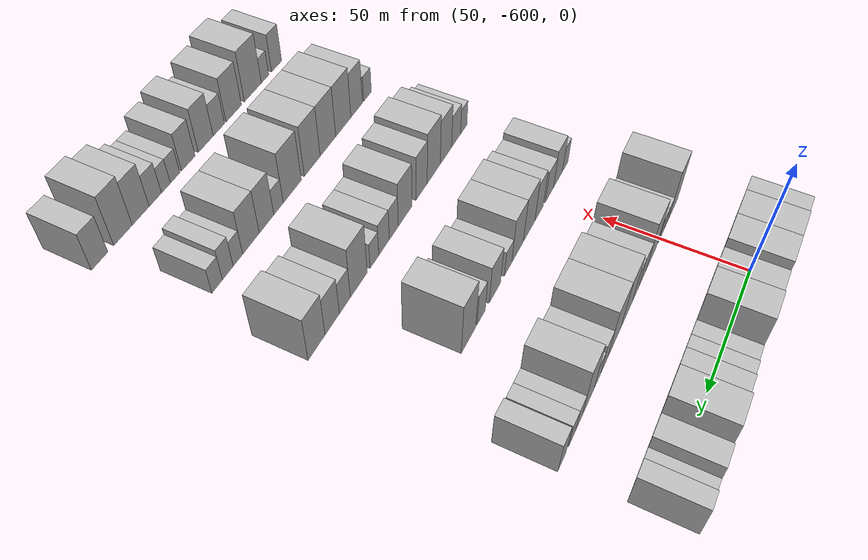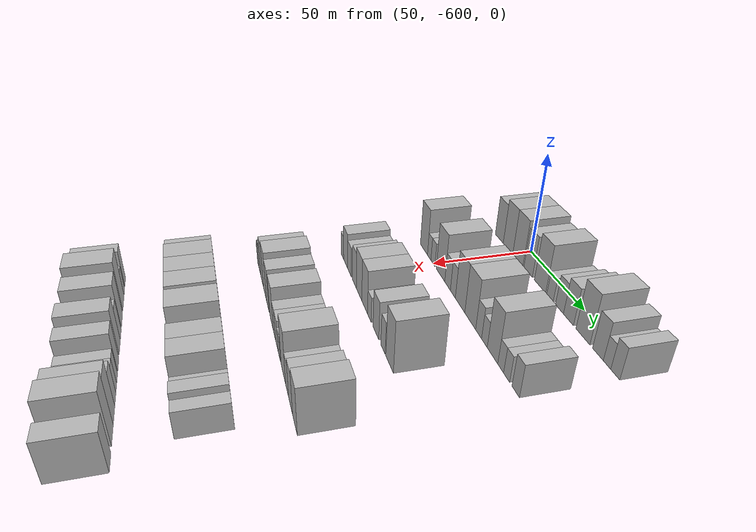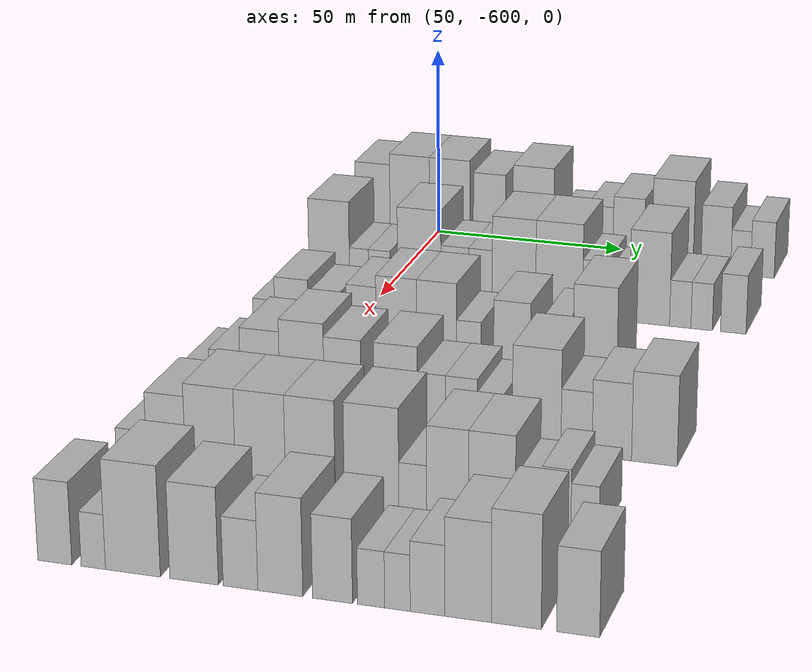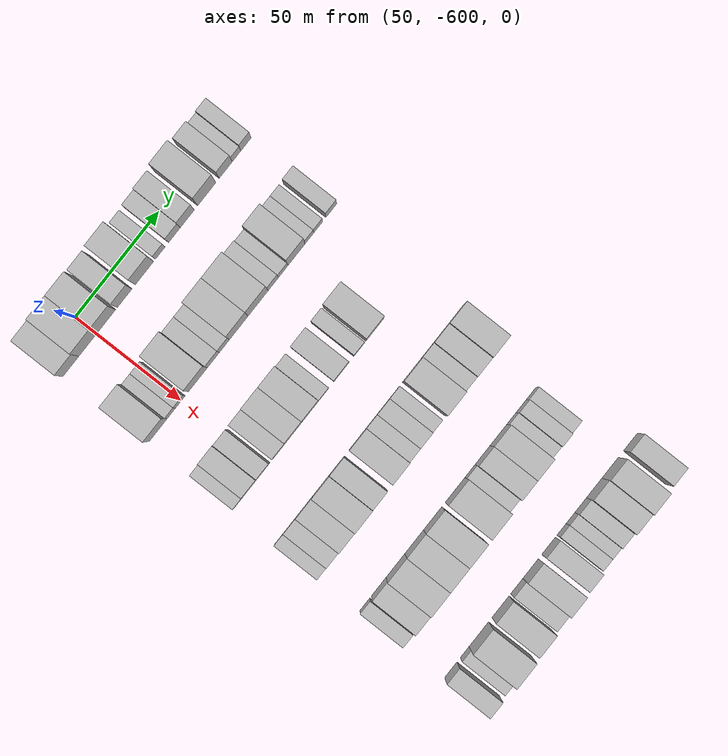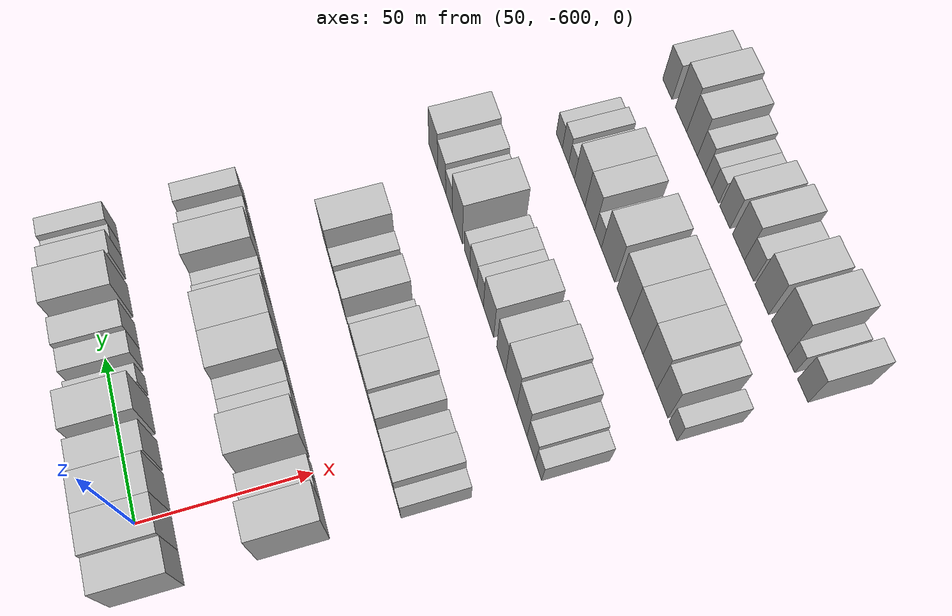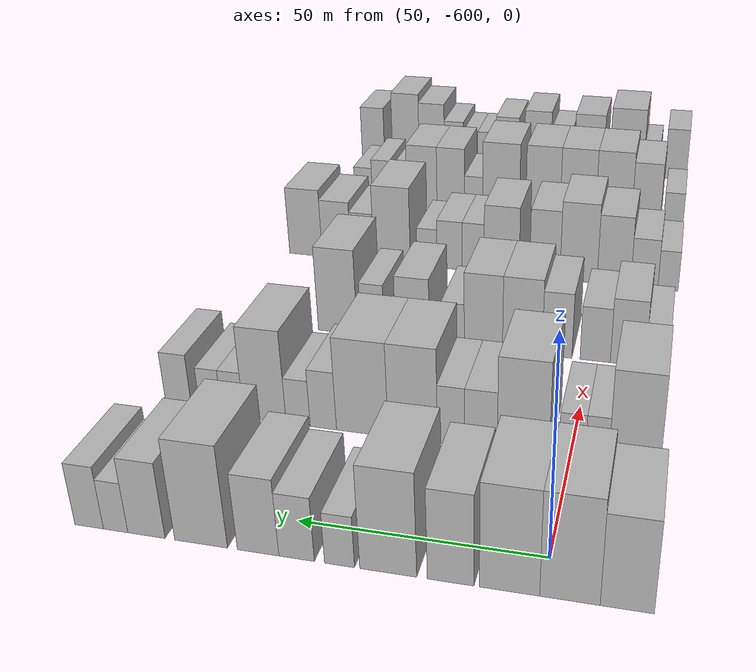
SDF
<sdf version="1.6">
 <world name="default">
  <model name="building_1">
   <static>1</static>
   <pose>50.0000 -615.2156 0 0.000000 0.000000 0.000000</pose>
   <link name="link">
    <pose>0 0 10.50 0 0 0</pose>
    <collision name="collision"><geometry><box><size>20.0000 9.5688 21.0000</size></box></geometry></collision>
    <visual name="visual">
     <cast_shadows>0</cast_shadows>
     <geometry><box><size>20.0000 9.5688 21.0000</size></box></geometry>
     <material>
      <script>
       <uri>model://HANNAS_wall/materials/scripts</uri>
       <uri>model://HANNAS_wall/materials/textures</uri>
       <name>vrc/HANNAS_wall</name>
      </script>
     </material>
    </visual>
   </link>
  </model>
  <model name="building_2">
   <static>1</static>
   <pose>50.0000 -604.9854 0 0.000000 0.000000 0.000000</pose>
   <link name="link">
    <pose>0 0 12.00 0 0 0</pose>
    <collision name="collision"><geometry><box><size>20.0000 10.8915 24.0000</size></box></geometry></collision>
    <visual name="visual">
     <cast_shadows>0</cast_shadows>
     <geometry><box><size>20.0000 10.8915 24.0000</size></box></geometry>
     <material>
      <script>
       <uri>model://HANNAS_wall/materials/scripts</uri>
       <uri>model://HANNAS_wall/materials/textures</uri>
       <name>vrc/HANNAS_wall</name>
      </script>
     </material>
    </visual>
   </link>
  </model>
  <model name="building_3">
   <static>1</static>
   <pose>50.0000 -594.0050 0 0.000000 0.000000 0.000000</pose>
   <link name="link">
    <pose>0 0 12.00 0 0 0</pose>
    <collision name="collision"><geometry><box><size>20.0000 11.0693 24.0000</size></box></geometry></collision>
    <visual name="visual">
     <cast_shadows>0</cast_shadows>
     <geometry><box><size>20.0000 11.0693 24.0000</size></box></geometry>
     <material>
      <script>
       <uri>model://HANNAS_wall/materials/scripts</uri>
       <uri>model://HANNAS_wall/materials/textures</uri>
       <name>vrc/HANNAS_wall</name>
      </script>
     </material>
    </visual>
   </link>
  </model>
  <model name="building_4">
   <static>1</static>
   <pose>50.0000 -583.0827 0 0.000000 0.000000 0.000000</pose>
   <link name="link">
    <pose>0 0 10.50 0 0 0</pose>
    <collision name="collision"><geometry><box><size>20.0000 8.7754 21.0000</size></box></geometry></collision>
    <visual name="visual">
     <cast_shadows>0</cast_shadows>
     <geometry><box><size>20.0000 8.7754 21.0000</size></box></geometry>
     <material>
      <script>
       <uri>model://HANNAS_wall/materials/scripts</uri>
       <uri>model://HANNAS_wall/materials/textures</uri>
       <name>vrc/HANNAS_wall</name>
      </script>
     </material>
    </visual>
   </link>
  </model>
  <model name="building_5">
   <static>1</static>
   <pose>50.0000 -571.2221 0 0.000000 0.000000 0.000000</pose>
   <link name="link">
    <pose>0 0 12.00 0 0 0</pose>
    <collision name="collision"><geometry><box><size>20.0000 10.9458 24.0000</size></box></geometry></collision>
    <visual name="visual">
     <cast_shadows>0</cast_shadows>
     <geometry><box><size>20.0000 10.9458 24.0000</size></box></geometry>
     <material>
      <script>
       <uri>model://HANNAS_wall/materials/scripts</uri>
       <uri>model://HANNAS_wall/materials/textures</uri>
       <name>vrc/HANNAS_wall</name>
      </script>
     </material>
    </visual>
   </link>
  </model>
  <model name="building_6">
   <static>1</static>
   <pose>50.0000 -561.8170 0 0.000000 0.000000 0.000000</pose>
   <link name="link">
    <pose>0 0 6.00 0 0 0</pose>
    <collision name="collision"><geometry><box><size>20.0000 5.8643 12.0000</size></box></geometry></collision>
    <visual name="visual">
     <cast_shadows>0</cast_shadows>
     <geometry><box><size>20.0000 5.8643 12.0000</size></box></geometry>
     <material>
      <script>
       <uri>model://HANNAS_wall/materials/scripts</uri>
       <uri>model://HANNAS_wall/materials/textures</uri>
       <name>vrc/HANNAS_wall</name>
      </script>
     </material>
    </visual>
   </link>
  </model>
  <model name="building_7">
   <static>1</static>
   <pose>50.0000 -553.3687 0 0.000000 0.000000 0.000000</pose>
   <link name="link">
    <pose>0 0 7.50 0 0 0</pose>
    <collision name="collision"><geometry><box><size>20.0000 7.0323 15.0000</size></box></geometry></collision>
    <visual name="visual">
     <cast_shadows>0</cast_shadows>
     <geometry><box><size>20.0000 7.0323 15.0000</size></box></geometry>
     <material>
      <script>
       <uri>model://HANNAS_wall/materials/scripts</uri>
       <uri>model://HANNAS_wall/materials/textures</uri>
       <name>vrc/HANNAS_wall</name>
      </script>
     </material>
    </visual>
   </link>
  </model>
  <model name="building_8">
   <static>1</static>
   <pose>50.0000 -545.6769 0 0.000000 0.000000 0.000000</pose>
   <link name="link">
    <pose>0 0 9.00 0 0 0</pose>
    <collision name="collision"><geometry><box><size>20.0000 8.3513 18.0000</size></box></geometry></collision>
    <visual name="visual">
     <cast_shadows>0</cast_shadows>
     <geometry><box><size>20.0000 8.3513 18.0000</size></box></geometry>
     <material>
      <script>
       <uri>model://HANNAS_wall/materials/scripts</uri>
       <uri>model://HANNAS_wall/materials/textures</uri>
       <name>vrc/HANNAS_wall</name>
      </script>
     </material>
    </visual>
   </link>
  </model>
  <model name="building_9">
   <static>1</static>
   <pose>50.0000 -534.0716 0 0.000000 0.000000 0.000000</pose>
   <link name="link">
    <pose>0 0 12.00 0 0 0</pose>
    <collision name="collision"><geometry><box><size>20.0000 10.8593 24.0000</size></box></geometry></collision>
    <visual name="visual">
     <cast_shadows>0</cast_shadows>
     <geometry><box><size>20.0000 10.8593 24.0000</size></box></geometry>
     <material>
      <script>
       <uri>model://HANNAS_wall/materials/scripts</uri>
       <uri>model://HANNAS_wall/materials/textures</uri>
       <name>vrc/HANNAS_wall</name>
      </script>
     </material>
    </visual>
   </link>
  </model>
  <model name="building_10">
   <static>1</static>
   <pose>50.0000 -522.7396 0 0.000000 0.000000 0.000000</pose>
   <link name="link">
    <pose>0 0 9.00 0 0 0</pose>
    <collision name="collision"><geometry><box><size>20.0000 7.8048 18.0000</size></box></geometry></collision>
    <visual name="visual">
     <cast_shadows>0</cast_shadows>
     <geometry><box><size>20.0000 7.8048 18.0000</size></box></geometry>
     <material>
      <script>
       <uri>model://HANNAS_wall/materials/scripts</uri>
       <uri>model://HANNAS_wall/materials/textures</uri>
       <name>vrc/HANNAS_wall</name>
      </script>
     </material>
    </visual>
   </link>
  </model>
  <model name="building_11">
   <static>1</static>
   <pose>50.0000 -516.2478 0 0.000000 0.000000 0.000000</pose>
   <link name="link">
    <pose>0 0 6.00 0 0 0</pose>
    <collision name="collision"><geometry><box><size>20.0000 5.1789 12.0000</size></box></geometry></collision>
    <visual name="visual">
     <cast_shadows>0</cast_shadows>
     <geometry><box><size>20.0000 5.1789 12.0000</size></box></geometry>
     <material>
      <script>
       <uri>model://HANNAS_wall/materials/scripts</uri>
       <uri>model://HANNAS_wall/materials/textures</uri>
       <name>vrc/HANNAS_wall</name>
      </script>
     </material>
    </visual>
   </link>
  </model>
  <model name="building_12">
   <static>1</static>
   <pose>50.0000 -510.6056 0 0.000000 0.000000 0.000000</pose>
   <link name="link">
    <pose>0 0 7.50 0 0 0</pose>
    <collision name="collision"><geometry><box><size>20.0000 6.1054 15.0000</size></box></geometry></collision>
    <visual name="visual">
     <cast_shadows>0</cast_shadows>
     <geometry><box><size>20.0000 6.1054 15.0000</size></box></geometry>
     <material>
      <script>
       <uri>model://HANNAS_wall/materials/scripts</uri>
       <uri>model://HANNAS_wall/materials/textures</uri>
       <name>vrc/HANNAS_wall</name>
      </script>
     </material>
    </visual>
   </link>
  </model>
  <model name="building_141">
   <static>1</static>
   <pose>90.0000 -613.6190 0 0.000000 0.000000 0.000000</pose>
   <link name="link">
    <pose>0 0 12.00 0 0 0</pose>
    <collision name="collision"><geometry><box><size>20.0000 10.7619 24.0000</size></box></geometry></collision>
    <visual name="visual">
     <cast_shadows>0</cast_shadows>
     <geometry><box><size>20.0000 10.7619 24.0000</size></box></geometry>
     <material>
      <script>
       <uri>model://HANNAS_wall/materials/scripts</uri>
       <uri>model://HANNAS_wall/materials/textures</uri>
       <name>vrc/HANNAS_wall</name>
      </script>
     </material>
    </visual>
   </link>
  </model>
  <model name="building_142">
   <static>1</static>
   <pose>90.0000 -605.7473 0 0.000000 0.000000 0.000000</pose>
   <link name="link">
    <pose>0 0 6.00 0 0 0</pose>
    <collision name="collision"><geometry><box><size>20.0000 4.9814 12.0000</size></box></geometry></collision>
    <visual name="visual">
     <cast_shadows>0</cast_shadows>
     <geometry><box><size>20.0000 4.9814 12.0000</size></box></geometry>
     <material>
      <script>
       <uri>model://HANNAS_wall/materials/scripts</uri>
       <uri>model://HANNAS_wall/materials/textures</uri>
       <name>vrc/HANNAS_wall</name>
      </script>
     </material>
    </visual>
   </link>
  </model>
  <model name="building_143">
   <static>1</static>
   <pose>90.0000 -600.4229 0 0.000000 0.000000 0.000000</pose>
   <link name="link">
    <pose>0 0 6.00 0 0 0</pose>
    <collision name="collision"><geometry><box><size>20.0000 5.6675 12.0000</size></box></geometry></collision>
    <visual name="visual">
     <cast_shadows>0</cast_shadows>
     <geometry><box><size>20.0000 5.6675 12.0000</size></box></geometry>
     <material>
      <script>
       <uri>model://HANNAS_wall/materials/scripts</uri>
       <uri>model://HANNAS_wall/materials/textures</uri>
       <name>vrc/HANNAS_wall</name>
      </script>
     </material>
    </visual>
   </link>
  </model>
  <model name="building_144">
   <static>1</static>
   <pose>90.0000 -589.9402 0 0.000000 0.000000 0.000000</pose>
   <link name="link">
    <pose>0 0 12.00 0 0 0</pose>
    <collision name="collision"><geometry><box><size>20.0000 11.2980 24.0000</size></box></geometry></collision>
    <visual name="visual">
     <cast_shadows>0</cast_shadows>
     <geometry><box><size>20.0000 11.2980 24.0000</size></box></geometry>
     <material>
      <script>
       <uri>model://HANNAS_wall/materials/scripts</uri>
       <uri>model://HANNAS_wall/materials/textures</uri>
       <name>vrc/HANNAS_wall</name>
      </script>
     </material>
    </visual>
   </link>
  </model>
  <model name="building_145">
   <static>1</static>
   <pose>90.0000 -580.6962 0 0.000000 0.000000 0.000000</pose>
   <link name="link">
    <pose>0 0 7.50 0 0 0</pose>
    <collision name="collision"><geometry><box><size>20.0000 7.1899 15.0000</size></box></geometry></collision>
    <visual name="visual">
     <cast_shadows>0</cast_shadows>
     <geometry><box><size>20.0000 7.1899 15.0000</size></box></geometry>
     <material>
      <script>
       <uri>model://HANNAS_wall/materials/scripts</uri>
       <uri>model://HANNAS_wall/materials/textures</uri>
       <name>vrc/HANNAS_wall</name>
      </script>
     </material>
    </visual>
   </link>
  </model>
  <model name="building_146">
   <static>1</static>
   <pose>90.0000 -574.0619 0 0.000000 0.000000 0.000000</pose>
   <link name="link">
    <pose>0 0 7.50 0 0 0</pose>
    <collision name="collision"><geometry><box><size>20.0000 6.0786 15.0000</size></box></geometry></collision>
    <visual name="visual">
     <cast_shadows>0</cast_shadows>
     <geometry><box><size>20.0000 6.0786 15.0000</size></box></geometry>
     <material>
      <script>
       <uri>model://HANNAS_wall/materials/scripts</uri>
       <uri>model://HANNAS_wall/materials/textures</uri>
       <name>vrc/HANNAS_wall</name>
      </script>
     </material>
    </visual>
   </link>
  </model>
  <model name="building_147">
   <static>1</static>
   <pose>90.0000 -565.4503 0 0.000000 0.000000 0.000000</pose>
   <link name="link">
    <pose>0 0 12.00 0 0 0</pose>
    <collision name="collision"><geometry><box><size>20.0000 11.1445 24.0000</size></box></geometry></collision>
    <visual name="visual">
     <cast_shadows>0</cast_shadows>
     <geometry><box><size>20.0000 11.1445 24.0000</size></box></geometry>
     <material>
      <script>
       <uri>model://HANNAS_wall/materials/scripts</uri>
       <uri>model://HANNAS_wall/materials/textures</uri>
       <name>vrc/HANNAS_wall</name>
      </script>
     </material>
    </visual>
   </link>
  </model>
  <model name="building_148">
   <static>1</static>
   <pose>90.0000 -553.9315 0 0.000000 0.000000 0.000000</pose>
   <link name="link">
    <pose>0 0 12.00 0 0 0</pose>
    <collision name="collision"><geometry><box><size>20.0000 11.8931 24.0000</size></box></geometry></collision>
    <visual name="visual">
     <cast_shadows>0</cast_shadows>
     <geometry><box><size>20.0000 11.8931 24.0000</size></box></geometry>
     <material>
      <script>
       <uri>model://HANNAS_wall/materials/scripts</uri>
       <uri>model://HANNAS_wall/materials/textures</uri>
       <name>vrc/HANNAS_wall</name>
      </script>
     </material>
    </visual>
   </link>
  </model>
  <model name="building_149">
   <static>1</static>
   <pose>90.0000 -544.9189 0 0.000000 0.000000 0.000000</pose>
   <link name="link">
    <pose>0 0 7.50 0 0 0</pose>
    <collision name="collision"><geometry><box><size>20.0000 6.1323 15.0000</size></box></geometry></collision>
    <visual name="visual">
     <cast_shadows>0</cast_shadows>
     <geometry><box><size>20.0000 6.1323 15.0000</size></box></geometry>
     <material>
      <script>
       <uri>model://HANNAS_wall/materials/scripts</uri>
       <uri>model://HANNAS_wall/materials/textures</uri>
       <name>vrc/HANNAS_wall</name>
      </script>
     </material>
    </visual>
   </link>
  </model>
  <model name="building_150">
   <static>1</static>
   <pose>90.0000 -539.0211 0 0.000000 0.000000 0.000000</pose>
   <link name="link">
    <pose>0 0 6.00 0 0 0</pose>
    <collision name="collision"><geometry><box><size>20.0000 5.6632 12.0000</size></box></geometry></collision>
    <visual name="visual">
     <cast_shadows>0</cast_shadows>
     <geometry><box><size>20.0000 5.6632 12.0000</size></box></geometry>
     <material>
      <script>
       <uri>model://HANNAS_wall/materials/scripts</uri>
       <uri>model://HANNAS_wall/materials/textures</uri>
       <name>vrc/HANNAS_wall</name>
      </script>
     </material>
    </visual>
   </link>
  </model>
  <model name="building_151">
   <static>1</static>
   <pose>90.0000 -531.1451 0 0.000000 0.000000 0.000000</pose>
   <link name="link">
    <pose>0 0 12.00 0 0 0</pose>
    <collision name="collision"><geometry><box><size>20.0000 10.0889 24.0000</size></box></geometry></collision>
    <visual name="visual">
     <cast_shadows>0</cast_shadows>
     <geometry><box><size>20.0000 10.0889 24.0000</size></box></geometry>
     <material>
      <script>
       <uri>model://HANNAS_wall/materials/scripts</uri>
       <uri>model://HANNAS_wall/materials/textures</uri>
       <name>vrc/HANNAS_wall</name>
      </script>
     </material>
    </visual>
   </link>
  </model>
  <model name="building_152">
   <static>1</static>
   <pose>90.0000 -523.4456 0 0.000000 0.000000 0.000000</pose>
   <link name="link">
    <pose>0 0 6.00 0 0 0</pose>
    <collision name="collision"><geometry><box><size>20.0000 5.3101 12.0000</size></box></geometry></collision>
    <visual name="visual">
     <cast_shadows>0</cast_shadows>
     <geometry><box><size>20.0000 5.3101 12.0000</size></box></geometry>
     <material>
      <script>
       <uri>model://HANNAS_wall/materials/scripts</uri>
       <uri>model://HANNAS_wall/materials/textures</uri>
       <name>vrc/HANNAS_wall</name>
      </script>
     </material>
    </visual>
   </link>
  </model>
  <model name="building_153">
   <static>1</static>
   <pose>90.0000 -518.1492 0 0.000000 0.000000 0.000000</pose>
   <link name="link">
    <pose>0 0 6.00 0 0 0</pose>
    <collision name="collision"><geometry><box><size>20.0000 5.2826 12.0000</size></box></geometry></collision>
    <visual name="visual">
     <cast_shadows>0</cast_shadows>
     <geometry><box><size>20.0000 5.2826 12.0000</size></box></geometry>
     <material>
      <script>
       <uri>model://HANNAS_wall/materials/scripts</uri>
       <uri>model://HANNAS_wall/materials/textures</uri>
       <name>vrc/HANNAS_wall</name>
      </script>
     </material>
    </visual>
   </link>
  </model>
  <model name="building_154">
   <static>1</static>
   <pose>90.0000 -510.3659 0 0.000000 0.000000 0.000000</pose>
   <link name="link">
    <pose>0 0 7.50 0 0 0</pose>
    <collision name="collision"><geometry><box><size>20.0000 6.2840 15.0000</size></box></geometry></collision>
    <visual name="visual">
     <cast_shadows>0</cast_shadows>
     <geometry><box><size>20.0000 6.2840 15.0000</size></box></geometry>
     <material>
      <script>
       <uri>model://HANNAS_wall/materials/scripts</uri>
       <uri>model://HANNAS_wall/materials/textures</uri>
       <name>vrc/HANNAS_wall</name>
      </script>
     </material>
    </visual>
   </link>
  </model>
  <model name="building_276">
   <static>1</static>
   <pose>130.0000 -616.2483 0 0.000000 0.000000 0.000000</pose>
   <link name="link">
    <pose>0 0 6.00 0 0 0</pose>
    <collision name="collision"><geometry><box><size>20.0000 5.5034 12.0000</size></box></geometry></collision>
    <visual name="visual">
     <cast_shadows>0</cast_shadows>
     <geometry><box><size>20.0000 5.5034 12.0000</size></box></geometry>
     <material>
      <script>
       <uri>model://HANNAS_wall/materials/scripts</uri>
       <uri>model://HANNAS_wall/materials/textures</uri>
       <name>vrc/HANNAS_wall</name>
      </script>
     </material>
    </visual>
   </link>
  </model>
  <model name="building_277">
   <static>1</static>
   <pose>130.0000 -609.2471 0 0.000000 0.000000 0.000000</pose>
   <link name="link">
    <pose>0 0 9.00 0 0 0</pose>
    <collision name="collision"><geometry><box><size>20.0000 8.4990 18.0000</size></box></geometry></collision>
    <visual name="visual">
     <cast_shadows>0</cast_shadows>
     <geometry><box><size>20.0000 8.4990 18.0000</size></box></geometry>
     <material>
      <script>
       <uri>model://HANNAS_wall/materials/scripts</uri>
       <uri>model://HANNAS_wall/materials/textures</uri>
       <name>vrc/HANNAS_wall</name>
      </script>
     </material>
    </visual>
   </link>
  </model>
  <model name="building_278">
   <static>1</static>
   <pose>130.0000 -601.2734 0 0.000000 0.000000 0.000000</pose>
   <link name="link">
    <pose>0 0 7.50 0 0 0</pose>
    <collision name="collision"><geometry><box><size>20.0000 7.4485 15.0000</size></box></geometry></collision>
    <visual name="visual">
     <cast_shadows>0</cast_shadows>
     <geometry><box><size>20.0000 7.4485 15.0000</size></box></geometry>
     <material>
      <script>
       <uri>model://HANNAS_wall/materials/scripts</uri>
       <uri>model://HANNAS_wall/materials/textures</uri>
       <name>vrc/HANNAS_wall</name>
      </script>
     </material>
    </visual>
   </link>
  </model>
  <model name="building_279">
   <static>1</static>
   <pose>130.0000 -591.8523 0 0.000000 0.000000 0.000000</pose>
   <link name="link">
    <pose>0 0 9.00 0 0 0</pose>
    <collision name="collision"><geometry><box><size>20.0000 7.3937 18.0000</size></box></geometry></collision>
    <visual name="visual">
     <cast_shadows>0</cast_shadows>
     <geometry><box><size>20.0000 7.3937 18.0000</size></box></geometry>
     <material>
      <script>
       <uri>model://HANNAS_wall/materials/scripts</uri>
       <uri>model://HANNAS_wall/materials/textures</uri>
       <name>vrc/HANNAS_wall</name>
      </script>
     </material>
    </visual>
   </link>
  </model>
  <model name="building_280">
   <static>1</static>
   <pose>130.0000 -583.1467 0 0.000000 0.000000 0.000000</pose>
   <link name="link">
    <pose>0 0 10.50 0 0 0</pose>
    <collision name="collision"><geometry><box><size>20.0000 10.0175 21.0000</size></box></geometry></collision>
    <visual name="visual">
     <cast_shadows>0</cast_shadows>
     <geometry><box><size>20.0000 10.0175 21.0000</size></box></geometry>
     <material>
      <script>
       <uri>model://HANNAS_wall/materials/scripts</uri>
       <uri>model://HANNAS_wall/materials/textures</uri>
       <name>vrc/HANNAS_wall</name>
      </script>
     </material>
    </visual>
   </link>
  </model>
  <model name="building_281">
   <static>1</static>
   <pose>130.0000 -573.2533 0 0.000000 0.000000 0.000000</pose>
   <link name="link">
    <pose>0 0 10.50 0 0 0</pose>
    <collision name="collision"><geometry><box><size>20.0000 9.7693 21.0000</size></box></geometry></collision>
    <visual name="visual">
     <cast_shadows>0</cast_shadows>
     <geometry><box><size>20.0000 9.7693 21.0000</size></box></geometry>
     <material>
      <script>
       <uri>model://HANNAS_wall/materials/scripts</uri>
       <uri>model://HANNAS_wall/materials/textures</uri>
       <name>vrc/HANNAS_wall</name>
      </script>
     </material>
    </visual>
   </link>
  </model>
  <model name="building_282">
   <static>1</static>
   <pose>130.0000 -565.3790 0 0.000000 0.000000 0.000000</pose>
   <link name="link">
    <pose>0 0 6.00 0 0 0</pose>
    <collision name="collision"><geometry><box><size>20.0000 5.9793 12.0000</size></box></geometry></collision>
    <visual name="visual">
     <cast_shadows>0</cast_shadows>
     <geometry><box><size>20.0000 5.9793 12.0000</size></box></geometry>
     <material>
      <script>
       <uri>model://HANNAS_wall/materials/scripts</uri>
       <uri>model://HANNAS_wall/materials/textures</uri>
       <name>vrc/HANNAS_wall</name>
      </script>
     </material>
    </visual>
   </link>
  </model>
  <model name="building_283">
   <static>1</static>
   <pose>130.0000 -554.9411 0 0.000000 0.000000 0.000000</pose>
   <link name="link">
    <pose>0 0 9.00 0 0 0</pose>
    <collision name="collision"><geometry><box><size>20.0000 8.8964 18.0000</size></box></geometry></collision>
    <visual name="visual">
     <cast_shadows>0</cast_shadows>
     <geometry><box><size>20.0000 8.8964 18.0000</size></box></geometry>
     <material>
      <script>
       <uri>model://HANNAS_wall/materials/scripts</uri>
       <uri>model://HANNAS_wall/materials/textures</uri>
       <name>vrc/HANNAS_wall</name>
      </script>
     </material>
    </visual>
   </link>
  </model>
  <model name="building_284">
   <static>1</static>
   <pose>130.0000 -544.3959 0 0.000000 0.000000 0.000000</pose>
   <link name="link">
    <pose>0 0 7.50 0 0 0</pose>
    <collision name="collision"><geometry><box><size>20.0000 6.1941 15.0000</size></box></geometry></collision>
    <visual name="visual">
     <cast_shadows>0</cast_shadows>
     <geometry><box><size>20.0000 6.1941 15.0000</size></box></geometry>
     <material>
      <script>
       <uri>model://HANNAS_wall/materials/scripts</uri>
       <uri>model://HANNAS_wall/materials/textures</uri>
       <name>vrc/HANNAS_wall</name>
      </script>
     </material>
    </visual>
   </link>
  </model>
  <model name="building_285">
   <static>1</static>
   <pose>130.0000 -535.0878 0 0.000000 0.000000 0.000000</pose>
   <link name="link">
    <pose>0 0 12.00 0 0 0</pose>
    <collision name="collision"><geometry><box><size>20.0000 10.4222 24.0000</size></box></geometry></collision>
    <visual name="visual">
     <cast_shadows>0</cast_shadows>
     <geometry><box><size>20.0000 10.4222 24.0000</size></box></geometry>
     <material>
      <script>
       <uri>model://HANNAS_wall/materials/scripts</uri>
       <uri>model://HANNAS_wall/materials/textures</uri>
       <name>vrc/HANNAS_wall</name>
      </script>
     </material>
    </visual>
   </link>
  </model>
  <model name="building_410">
   <static>1</static>
   <pose>170.0000 -617.2385 0 0.000000 0.000000 0.000000</pose>
   <link name="link">
    <pose>0 0 6.00 0 0 0</pose>
    <collision name="collision"><geometry><box><size>20.0000 5.5230 12.0000</size></box></geometry></collision>
    <visual name="visual">
     <cast_shadows>0</cast_shadows>
     <geometry><box><size>20.0000 5.5230 12.0000</size></box></geometry>
     <material>
      <script>
       <uri>model://HANNAS_wall/materials/scripts</uri>
       <uri>model://HANNAS_wall/materials/textures</uri>
       <name>vrc/HANNAS_wall</name>
      </script>
     </material>
    </visual>
   </link>
  </model>
  <model name="building_411">
   <static>1</static>
   <pose>170.0000 -610.7409 0 0.000000 0.000000 0.000000</pose>
   <link name="link">
    <pose>0 0 7.50 0 0 0</pose>
    <collision name="collision"><geometry><box><size>20.0000 7.4721 15.0000</size></box></geometry></collision>
    <visual name="visual">
     <cast_shadows>0</cast_shadows>
     <geometry><box><size>20.0000 7.4721 15.0000</size></box></geometry>
     <material>
      <script>
       <uri>model://HANNAS_wall/materials/scripts</uri>
       <uri>model://HANNAS_wall/materials/textures</uri>
       <name>vrc/HANNAS_wall</name>
      </script>
     </material>
    </visual>
   </link>
  </model>
  <model name="building_412">
   <static>1</static>
   <pose>170.0000 -602.3396 0 0.000000 0.000000 0.000000</pose>
   <link name="link">
    <pose>0 0 10.50 0 0 0</pose>
    <collision name="collision"><geometry><box><size>20.0000 9.3305 21.0000</size></box></geometry></collision>
    <visual name="visual">
     <cast_shadows>0</cast_shadows>
     <geometry><box><size>20.0000 9.3305 21.0000</size></box></geometry>
     <material>
      <script>
       <uri>model://HANNAS_wall/materials/scripts</uri>
       <uri>model://HANNAS_wall/materials/textures</uri>
       <name>vrc/HANNAS_wall</name>
      </script>
     </material>
    </visual>
   </link>
  </model>
  <model name="building_413">
   <static>1</static>
   <pose>170.0000 -592.4498 0 0.000000 0.000000 0.000000</pose>
   <link name="link">
    <pose>0 0 12.00 0 0 0</pose>
    <collision name="collision"><geometry><box><size>20.0000 10.4492 24.0000</size></box></geometry></collision>
    <visual name="visual">
     <cast_shadows>0</cast_shadows>
     <geometry><box><size>20.0000 10.4492 24.0000</size></box></geometry>
     <material>
      <script>
       <uri>model://HANNAS_wall/materials/scripts</uri>
       <uri>model://HANNAS_wall/materials/textures</uri>
       <name>vrc/HANNAS_wall</name>
      </script>
     </material>
    </visual>
   </link>
  </model>
  <model name="building_414">
   <static>1</static>
   <pose>170.0000 -582.9175 0 0.000000 0.000000 0.000000</pose>
   <link name="link">
    <pose>0 0 10.50 0 0 0</pose>
    <collision name="collision"><geometry><box><size>20.0000 8.6153 21.0000</size></box></geometry></collision>
    <visual name="visual">
     <cast_shadows>0</cast_shadows>
     <geometry><box><size>20.0000 8.6153 21.0000</size></box></geometry>
     <material>
      <script>
       <uri>model://HANNAS_wall/materials/scripts</uri>
       <uri>model://HANNAS_wall/materials/textures</uri>
       <name>vrc/HANNAS_wall</name>
      </script>
     </material>
    </visual>
   </link>
  </model>
  <model name="building_415">
   <static>1</static>
   <pose>170.0000 -570.5486 0 0.000000 0.000000 0.000000</pose>
   <link name="link">
    <pose>0 0 10.50 0 0 0</pose>
    <collision name="collision"><geometry><box><size>20.0000 10.1227 21.0000</size></box></geometry></collision>
    <visual name="visual">
     <cast_shadows>0</cast_shadows>
     <geometry><box><size>20.0000 10.1227 21.0000</size></box></geometry>
     <material>
      <script>
       <uri>model://HANNAS_wall/materials/scripts</uri>
       <uri>model://HANNAS_wall/materials/textures</uri>
       <name>vrc/HANNAS_wall</name>
      </script>
     </material>
    </visual>
   </link>
  </model>
  <model name="building_416">
   <static>1</static>
   <pose>170.0000 -562.2956 0 0.000000 0.000000 0.000000</pose>
   <link name="link">
    <pose>0 0 7.50 0 0 0</pose>
    <collision name="collision"><geometry><box><size>20.0000 6.3832 15.0000</size></box></geometry></collision>
    <visual name="visual">
     <cast_shadows>0</cast_shadows>
     <geometry><box><size>20.0000 6.3832 15.0000</size></box></geometry>
     <material>
      <script>
       <uri>model://HANNAS_wall/materials/scripts</uri>
       <uri>model://HANNAS_wall/materials/textures</uri>
       <name>vrc/HANNAS_wall</name>
      </script>
     </material>
    </visual>
   </link>
  </model>
  <model name="building_417">
   <static>1</static>
   <pose>170.0000 -555.4278 0 0.000000 0.000000 0.000000</pose>
   <link name="link">
    <pose>0 0 7.50 0 0 0</pose>
    <collision name="collision"><geometry><box><size>20.0000 7.3524 15.0000</size></box></geometry></collision>
    <visual name="visual">
     <cast_shadows>0</cast_shadows>
     <geometry><box><size>20.0000 7.3524 15.0000</size></box></geometry>
     <material>
      <script>
       <uri>model://HANNAS_wall/materials/scripts</uri>
       <uri>model://HANNAS_wall/materials/textures</uri>
       <name>vrc/HANNAS_wall</name>
      </script>
     </material>
    </visual>
   </link>
  </model>
  <model name="building_418">
   <static>1</static>
   <pose>170.0000 -548.7995 0 0.000000 0.000000 0.000000</pose>
   <link name="link">
    <pose>0 0 6.00 0 0 0</pose>
    <collision name="collision"><geometry><box><size>20.0000 5.9043 12.0000</size></box></geometry></collision>
    <visual name="visual">
     <cast_shadows>0</cast_shadows>
     <geometry><box><size>20.0000 5.9043 12.0000</size></box></geometry>
     <material>
      <script>
       <uri>model://HANNAS_wall/materials/scripts</uri>
       <uri>model://HANNAS_wall/materials/textures</uri>
       <name>vrc/HANNAS_wall</name>
      </script>
     </material>
    </visual>
   </link>
  </model>
  <model name="building_419">
   <static>1</static>
   <pose>170.0000 -538.3559 0 0.000000 0.000000 0.000000</pose>
   <link name="link">
    <pose>0 0 12.00 0 0 0</pose>
    <collision name="collision"><geometry><box><size>20.0000 10.9829 24.0000</size></box></geometry></collision>
    <visual name="visual">
     <cast_shadows>0</cast_shadows>
     <geometry><box><size>20.0000 10.9829 24.0000</size></box></geometry>
     <material>
      <script>
       <uri>model://HANNAS_wall/materials/scripts</uri>
       <uri>model://HANNAS_wall/materials/textures</uri>
       <name>vrc/HANNAS_wall</name>
      </script>
     </material>
    </visual>
   </link>
  </model>
  <model name="building_420">
   <static>1</static>
   <pose>170.0000 -529.3795 0 0.000000 0.000000 0.000000</pose>
   <link name="link">
    <pose>0 0 7.50 0 0 0</pose>
    <collision name="collision"><geometry><box><size>20.0000 6.9699 15.0000</size></box></geometry></collision>
    <visual name="visual">
     <cast_shadows>0</cast_shadows>
     <geometry><box><size>20.0000 6.9699 15.0000</size></box></geometry>
     <material>
      <script>
       <uri>model://HANNAS_wall/materials/scripts</uri>
       <uri>model://HANNAS_wall/materials/textures</uri>
       <name>vrc/HANNAS_wall</name>
      </script>
     </material>
    </visual>
   </link>
  </model>
  <model name="building_421">
   <static>1</static>
   <pose>170.0000 -521.5071 0 0.000000 0.000000 0.000000</pose>
   <link name="link">
    <pose>0 0 9.00 0 0 0</pose>
    <collision name="collision"><geometry><box><size>20.0000 8.7749 18.0000</size></box></geometry></collision>
    <visual name="visual">
     <cast_shadows>0</cast_shadows>
     <geometry><box><size>20.0000 8.7749 18.0000</size></box></geometry>
     <material>
      <script>
       <uri>model://HANNAS_wall/materials/scripts</uri>
       <uri>model://HANNAS_wall/materials/textures</uri>
       <name>vrc/HANNAS_wall</name>
      </script>
     </material>
    </visual>
   </link>
  </model>
  <model name="building_422">
   <static>1</static>
   <pose>170.0000 -512.0831 0 0.000000 0.000000 0.000000</pose>
   <link name="link">
    <pose>0 0 10.50 0 0 0</pose>
    <collision name="collision"><geometry><box><size>20.0000 10.0730 21.0000</size></box></geometry></collision>
    <visual name="visual">
     <cast_shadows>0</cast_shadows>
     <geometry><box><size>20.0000 10.0730 21.0000</size></box></geometry>
     <material>
      <script>
       <uri>model://HANNAS_wall/materials/scripts</uri>
       <uri>model://HANNAS_wall/materials/textures</uri>
       <name>vrc/HANNAS_wall</name>
      </script>
     </material>
    </visual>
   </link>
  </model>
  <model name="building_542">
   <static>1</static>
   <pose>210.0000 -617.0179 0 0.000000 0.000000 0.000000</pose>
   <link name="link">
    <pose>0 0 6.00 0 0 0</pose>
    <collision name="collision"><geometry><box><size>20.0000 5.9641 12.0000</size></box></geometry></collision>
    <visual name="visual">
     <cast_shadows>0</cast_shadows>
     <geometry><box><size>20.0000 5.9641 12.0000</size></box></geometry>
     <material>
      <script>
       <uri>model://HANNAS_wall/materials/scripts</uri>
       <uri>model://HANNAS_wall/materials/textures</uri>
       <name>vrc/HANNAS_wall</name>
      </script>
     </material>
    </visual>
   </link>
  </model>
  <model name="building_543">
   <static>1</static>
   <pose>210.0000 -608.6472 0 0.000000 0.000000 0.000000</pose>
   <link name="link">
    <pose>0 0 10.50 0 0 0</pose>
    <collision name="collision"><geometry><box><size>20.0000 8.7773 21.0000</size></box></geometry></collision>
    <visual name="visual">
     <cast_shadows>0</cast_shadows>
     <geometry><box><size>20.0000 8.7773 21.0000</size></box></geometry>
     <material>
      <script>
       <uri>model://HANNAS_wall/materials/scripts</uri>
       <uri>model://HANNAS_wall/materials/textures</uri>
       <name>vrc/HANNAS_wall</name>
      </script>
     </material>
    </visual>
   </link>
  </model>
  <model name="building_544">
   <static>1</static>
   <pose>210.0000 -598.6594 0 0.000000 0.000000 0.000000</pose>
   <link name="link">
    <pose>0 0 12.00 0 0 0</pose>
    <collision name="collision"><geometry><box><size>20.0000 11.1983 24.0000</size></box></geometry></collision>
    <visual name="visual">
     <cast_shadows>0</cast_shadows>
     <geometry><box><size>20.0000 11.1983 24.0000</size></box></geometry>
     <material>
      <script>
       <uri>model://HANNAS_wall/materials/scripts</uri>
       <uri>model://HANNAS_wall/materials/textures</uri>
       <name>vrc/HANNAS_wall</name>
      </script>
     </material>
    </visual>
   </link>
  </model>
  <model name="building_545">
   <static>1</static>
   <pose>210.0000 -587.4887 0 0.000000 0.000000 0.000000</pose>
   <link name="link">
    <pose>0 0 12.00 0 0 0</pose>
    <collision name="collision"><geometry><box><size>20.0000 11.1432 24.0000</size></box></geometry></collision>
    <visual name="visual">
     <cast_shadows>0</cast_shadows>
     <geometry><box><size>20.0000 11.1432 24.0000</size></box></geometry>
     <material>
      <script>
       <uri>model://HANNAS_wall/materials/scripts</uri>
       <uri>model://HANNAS_wall/materials/textures</uri>
       <name>vrc/HANNAS_wall</name>
      </script>
     </material>
    </visual>
   </link>
  </model>
  <model name="building_546">
   <static>1</static>
   <pose>210.0000 -576.4506 0 0.000000 0.000000 0.000000</pose>
   <link name="link">
    <pose>0 0 12.00 0 0 0</pose>
    <collision name="collision"><geometry><box><size>20.0000 10.9330 24.0000</size></box></geometry></collision>
    <visual name="visual">
     <cast_shadows>0</cast_shadows>
     <geometry><box><size>20.0000 10.9330 24.0000</size></box></geometry>
     <material>
      <script>
       <uri>model://HANNAS_wall/materials/scripts</uri>
       <uri>model://HANNAS_wall/materials/textures</uri>
       <name>vrc/HANNAS_wall</name>
      </script>
     </material>
    </visual>
   </link>
  </model>
  <model name="building_547">
   <static>1</static>
   <pose>210.0000 -563.0594 0 0.000000 0.000000 0.000000</pose>
   <link name="link">
    <pose>0 0 12.00 0 0 0</pose>
    <collision name="collision"><geometry><box><size>20.0000 11.8495 24.0000</size></box></geometry></collision>
    <visual name="visual">
     <cast_shadows>0</cast_shadows>
     <geometry><box><size>20.0000 11.8495 24.0000</size></box></geometry>
     <material>
      <script>
       <uri>model://HANNAS_wall/materials/scripts</uri>
       <uri>model://HANNAS_wall/materials/textures</uri>
       <name>vrc/HANNAS_wall</name>
      </script>
     </material>
    </visual>
   </link>
  </model>
  <model name="building_548">
   <static>1</static>
   <pose>210.0000 -554.1368 0 0.000000 0.000000 0.000000</pose>
   <link name="link">
    <pose>0 0 6.00 0 0 0</pose>
    <collision name="collision"><geometry><box><size>20.0000 5.9956 12.0000</size></box></geometry></collision>
    <visual name="visual">
     <cast_shadows>0</cast_shadows>
     <geometry><box><size>20.0000 5.9956 12.0000</size></box></geometry>
     <material>
      <script>
       <uri>model://HANNAS_wall/materials/scripts</uri>
       <uri>model://HANNAS_wall/materials/textures</uri>
       <name>vrc/HANNAS_wall</name>
      </script>
     </material>
    </visual>
   </link>
  </model>
  <model name="building_549">
   <static>1</static>
   <pose>210.0000 -546.6345 0 0.000000 0.000000 0.000000</pose>
   <link name="link">
    <pose>0 0 10.50 0 0 0</pose>
    <collision name="collision"><geometry><box><size>20.0000 9.0091 21.0000</size></box></geometry></collision>
    <visual name="visual">
     <cast_shadows>0</cast_shadows>
     <geometry><box><size>20.0000 9.0091 21.0000</size></box></geometry>
     <material>
      <script>
       <uri>model://HANNAS_wall/materials/scripts</uri>
       <uri>model://HANNAS_wall/materials/textures</uri>
       <name>vrc/HANNAS_wall</name>
      </script>
     </material>
    </visual>
   </link>
  </model>
  <model name="building_550">
   <static>1</static>
   <pose>210.0000 -537.1617 0 0.000000 0.000000 0.000000</pose>
   <link name="link">
    <pose>0 0 10.50 0 0 0</pose>
    <collision name="collision"><geometry><box><size>20.0000 9.9365 21.0000</size></box></geometry></collision>
    <visual name="visual">
     <cast_shadows>0</cast_shadows>
     <geometry><box><size>20.0000 9.9365 21.0000</size></box></geometry>
     <material>
      <script>
       <uri>model://HANNAS_wall/materials/scripts</uri>
       <uri>model://HANNAS_wall/materials/textures</uri>
       <name>vrc/HANNAS_wall</name>
      </script>
     </material>
    </visual>
   </link>
  </model>
  <model name="building_551">
   <static>1</static>
   <pose>210.0000 -529.4176 0 0.000000 0.000000 0.000000</pose>
   <link name="link">
    <pose>0 0 6.00 0 0 0</pose>
    <collision name="collision"><geometry><box><size>20.0000 5.5517 12.0000</size></box></geometry></collision>
    <visual name="visual">
     <cast_shadows>0</cast_shadows>
     <geometry><box><size>20.0000 5.5517 12.0000</size></box></geometry>
     <material>
      <script>
       <uri>model://HANNAS_wall/materials/scripts</uri>
       <uri>model://HANNAS_wall/materials/textures</uri>
       <name>vrc/HANNAS_wall</name>
      </script>
     </material>
    </visual>
   </link>
  </model>
  <model name="building_552">
   <static>1</static>
   <pose>210.0000 -523.5895 0 0.000000 0.000000 0.000000</pose>
   <link name="link">
    <pose>0 0 7.50 0 0 0</pose>
    <collision name="collision"><geometry><box><size>20.0000 6.1045 15.0000</size></box></geometry></collision>
    <visual name="visual">
     <cast_shadows>0</cast_shadows>
     <geometry><box><size>20.0000 6.1045 15.0000</size></box></geometry>
     <material>
      <script>
       <uri>model://HANNAS_wall/materials/scripts</uri>
       <uri>model://HANNAS_wall/materials/textures</uri>
       <name>vrc/HANNAS_wall</name>
      </script>
     </material>
    </visual>
   </link>
  </model>
  <model name="building_553">
   <static>1</static>
   <pose>210.0000 -517.5912 0 0.000000 0.000000 0.000000</pose>
   <link name="link">
    <pose>0 0 6.00 0 0 0</pose>
    <collision name="collision"><geometry><box><size>20.0000 5.8921 12.0000</size></box></geometry></collision>
    <visual name="visual">
     <cast_shadows>0</cast_shadows>
     <geometry><box><size>20.0000 5.8921 12.0000</size></box></geometry>
     <material>
      <script>
       <uri>model://HANNAS_wall/materials/scripts</uri>
       <uri>model://HANNAS_wall/materials/textures</uri>
       <name>vrc/HANNAS_wall</name>
      </script>
     </material>
    </visual>
   </link>
  </model>
  <model name="building_683">
   <static>1</static>
   <pose>250.0000 -616.3176 0 0.000000 0.000000 0.000000</pose>
   <link name="link">
    <pose>0 0 9.00 0 0 0</pose>
    <collision name="collision"><geometry><box><size>20.0000 7.3649 18.0000</size></box></geometry></collision>
    <visual name="visual">
     <cast_shadows>0</cast_shadows>
     <geometry><box><size>20.0000 7.3649 18.0000</size></box></geometry>
     <material>
      <script>
       <uri>model://HANNAS_wall/materials/scripts</uri>
       <uri>model://HANNAS_wall/materials/textures</uri>
       <name>vrc/HANNAS_wall</name>
      </script>
     </material>
    </visual>
   </link>
  </model>
  <model name="building_684">
   <static>1</static>
   <pose>250.0000 -608.0206 0 0.000000 0.000000 0.000000</pose>
   <link name="link">
    <pose>0 0 6.00 0 0 0</pose>
    <collision name="collision"><geometry><box><size>20.0000 5.2291 12.0000</size></box></geometry></collision>
    <visual name="visual">
     <cast_shadows>0</cast_shadows>
     <geometry><box><size>20.0000 5.2291 12.0000</size></box></geometry>
     <material>
      <script>
       <uri>model://HANNAS_wall/materials/scripts</uri>
       <uri>model://HANNAS_wall/materials/textures</uri>
       <name>vrc/HANNAS_wall</name>
      </script>
     </material>
    </visual>
   </link>
  </model>
  <model name="building_685">
   <static>1</static>
   <pose>250.0000 -599.5693 0 0.000000 0.000000 0.000000</pose>
   <link name="link">
    <pose>0 0 12.00 0 0 0</pose>
    <collision name="collision"><geometry><box><size>20.0000 11.6733 24.0000</size></box></geometry></collision>
    <visual name="visual">
     <cast_shadows>0</cast_shadows>
     <geometry><box><size>20.0000 11.6733 24.0000</size></box></geometry>
     <material>
      <script>
       <uri>model://HANNAS_wall/materials/scripts</uri>
       <uri>model://HANNAS_wall/materials/textures</uri>
       <name>vrc/HANNAS_wall</name>
      </script>
     </material>
    </visual>
   </link>
  </model>
  <model name="building_686">
   <static>1</static>
   <pose>250.0000 -586.6170 0 0.000000 0.000000 0.000000</pose>
   <link name="link">
    <pose>0 0 10.50 0 0 0</pose>
    <collision name="collision"><geometry><box><size>20.0000 10.2314 21.0000</size></box></geometry></collision>
    <visual name="visual">
     <cast_shadows>0</cast_shadows>
     <geometry><box><size>20.0000 10.2314 21.0000</size></box></geometry>
     <material>
      <script>
       <uri>model://HANNAS_wall/materials/scripts</uri>
       <uri>model://HANNAS_wall/materials/textures</uri>
       <name>vrc/HANNAS_wall</name>
      </script>
     </material>
    </visual>
   </link>
  </model>
  <model name="building_687">
   <static>1</static>
   <pose>250.0000 -576.8922 0 0.000000 0.000000 0.000000</pose>
   <link name="link">
    <pose>0 0 7.50 0 0 0</pose>
    <collision name="collision"><geometry><box><size>20.0000 7.2182 15.0000</size></box></geometry></collision>
    <visual name="visual">
     <cast_shadows>0</cast_shadows>
     <geometry><box><size>20.0000 7.2182 15.0000</size></box></geometry>
     <material>
      <script>
       <uri>model://HANNAS_wall/materials/scripts</uri>
       <uri>model://HANNAS_wall/materials/textures</uri>
       <name>vrc/HANNAS_wall</name>
      </script>
     </material>
    </visual>
   </link>
  </model>
  <model name="building_688">
   <static>1</static>
   <pose>250.0000 -568.6340 0 0.000000 0.000000 0.000000</pose>
   <link name="link">
    <pose>0 0 10.50 0 0 0</pose>
    <collision name="collision"><geometry><box><size>20.0000 9.2980 21.0000</size></box></geometry></collision>
    <visual name="visual">
     <cast_shadows>0</cast_shadows>
     <geometry><box><size>20.0000 9.2980 21.0000</size></box></geometry>
     <material>
      <script>
       <uri>model://HANNAS_wall/materials/scripts</uri>
       <uri>model://HANNAS_wall/materials/textures</uri>
       <name>vrc/HANNAS_wall</name>
      </script>
     </material>
    </visual>
   </link>
  </model>
  <model name="building_689">
   <static>1</static>
   <pose>250.0000 -557.9065 0 0.000000 0.000000 0.000000</pose>
   <link name="link">
    <pose>0 0 9.00 0 0 0</pose>
    <collision name="collision"><geometry><box><size>20.0000 8.1571 18.0000</size></box></geometry></collision>
    <visual name="visual">
     <cast_shadows>0</cast_shadows>
     <geometry><box><size>20.0000 8.1571 18.0000</size></box></geometry>
     <material>
      <script>
       <uri>model://HANNAS_wall/materials/scripts</uri>
       <uri>model://HANNAS_wall/materials/textures</uri>
       <name>vrc/HANNAS_wall</name>
      </script>
     </material>
    </visual>
   </link>
  </model>
  <model name="building_690">
   <static>1</static>
   <pose>250.0000 -550.0672 0 0.000000 0.000000 0.000000</pose>
   <link name="link">
    <pose>0 0 6.00 0 0 0</pose>
    <collision name="collision"><geometry><box><size>20.0000 5.5215 12.0000</size></box></geometry></collision>
    <visual name="visual">
     <cast_shadows>0</cast_shadows>
     <geometry><box><size>20.0000 5.5215 12.0000</size></box></geometry>
     <material>
      <script>
       <uri>model://HANNAS_wall/materials/scripts</uri>
       <uri>model://HANNAS_wall/materials/textures</uri>
       <name>vrc/HANNAS_wall</name>
      </script>
     </material>
    </visual>
   </link>
  </model>
  <model name="building_691">
   <static>1</static>
   <pose>250.0000 -544.7371 0 0.000000 0.000000 0.000000</pose>
   <link name="link">
    <pose>0 0 6.00 0 0 0</pose>
    <collision name="collision"><geometry><box><size>20.0000 5.1388 12.0000</size></box></geometry></collision>
    <visual name="visual">
     <cast_shadows>0</cast_shadows>
     <geometry><box><size>20.0000 5.1388 12.0000</size></box></geometry>
     <material>
      <script>
       <uri>model://HANNAS_wall/materials/scripts</uri>
       <uri>model://HANNAS_wall/materials/textures</uri>
       <name>vrc/HANNAS_wall</name>
      </script>
     </material>
    </visual>
   </link>
  </model>
  <model name="building_692">
   <static>1</static>
   <pose>250.0000 -538.7027 0 0.000000 0.000000 0.000000</pose>
   <link name="link">
    <pose>0 0 7.50 0 0 0</pose>
    <collision name="collision"><geometry><box><size>20.0000 6.9300 15.0000</size></box></geometry></collision>
    <visual name="visual">
     <cast_shadows>0</cast_shadows>
     <geometry><box><size>20.0000 6.9300 15.0000</size></box></geometry>
     <material>
      <script>
       <uri>model://HANNAS_wall/materials/scripts</uri>
       <uri>model://HANNAS_wall/materials/textures</uri>
       <name>vrc/HANNAS_wall</name>
      </script>
     </material>
    </visual>
   </link>
  </model>
  <model name="building_693">
   <static>1</static>
   <pose>250.0000 -530.6083 0 0.000000 0.000000 0.000000</pose>
   <link name="link">
    <pose>0 0 10.50 0 0 0</pose>
    <collision name="collision"><geometry><box><size>20.0000 9.2589 21.0000</size></box></geometry></collision>
    <visual name="visual">
     <cast_shadows>0</cast_shadows>
     <geometry><box><size>20.0000 9.2589 21.0000</size></box></geometry>
     <material>
      <script>
       <uri>model://HANNAS_wall/materials/scripts</uri>
       <uri>model://HANNAS_wall/materials/textures</uri>
       <name>vrc/HANNAS_wall</name>
      </script>
     </material>
    </visual>
   </link>
  </model>
  <model name="building_694">
   <static>1</static>
   <pose>250.0000 -521.0560 0 0.000000 0.000000 0.000000</pose>
   <link name="link">
    <pose>0 0 12.00 0 0 0</pose>
    <collision name="collision"><geometry><box><size>20.0000 9.8458 24.0000</size></box></geometry></collision>
    <visual name="visual">
     <cast_shadows>0</cast_shadows>
     <geometry><box><size>20.0000 9.8458 24.0000</size></box></geometry>
     <material>
      <script>
       <uri>model://HANNAS_wall/materials/scripts</uri>
       <uri>model://HANNAS_wall/materials/textures</uri>
       <name>vrc/HANNAS_wall</name>
      </script>
     </material>
    </visual>
   </link>
  </model>
  <model name="building_695">
   <static>1</static>
   <pose>250.0000 -508.9485 0 0.000000 0.000000 0.000000</pose>
   <link name="link">
    <pose>0 0 9.00 0 0 0</pose>
    <collision name="collision"><geometry><box><size>20.0000 8.3690 18.0000</size></box></geometry></collision>
    <visual name="visual">
     <cast_shadows>0</cast_shadows>
     <geometry><box><size>20.0000 8.3690 18.0000</size></box></geometry>
     <material>
      <script>
       <uri>model://HANNAS_wall/materials/scripts</uri>
       <uri>model://HANNAS_wall/materials/textures</uri>
       <name>vrc/HANNAS_wall</name>
      </script>
     </material>
    </visual>
   </link>
  </model>
 </world>
</sdf>
